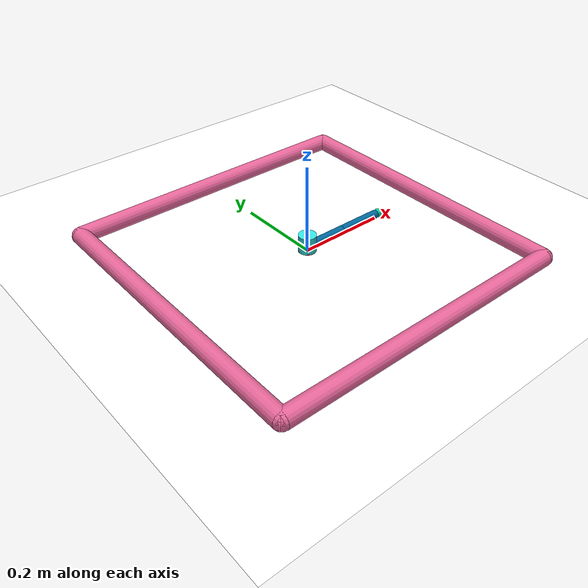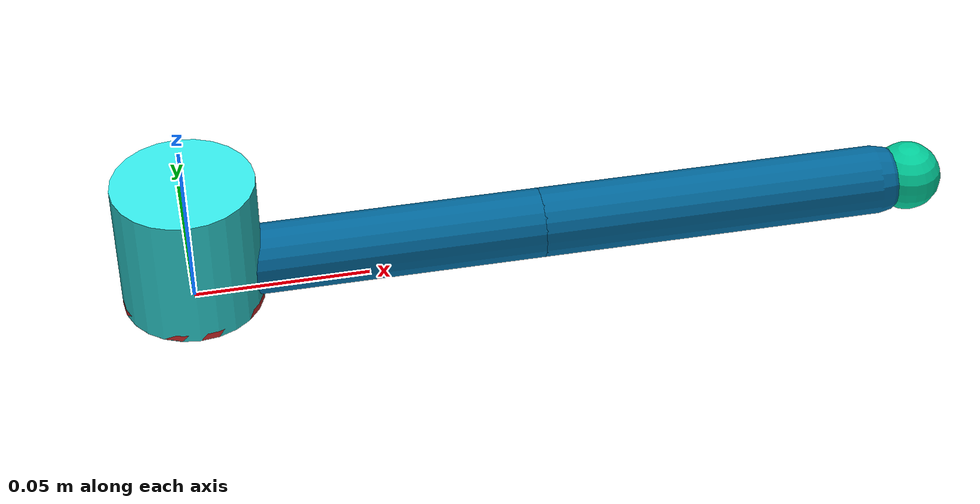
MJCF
<mujoco model="reacher">
	<compiler angle="radian" inertiafromgeom="true"/>
	<default>
		<joint armature="1" damping="1" limited="true"/>
		<geom condim="1" contype="0" friction="0.1 0.001 0.001" rgba="0.7 0.7 0 1"/>
	</default>
	<option gravity="0 0 -9.81" integrator="RK4" timestep="0.01"/>

	<asset>
      <texture name="grid" type="2d" builtin="checker" rgb1=".6 .6 .6"
        rgb2=".8 .8 .8" width="100" height="100" mark="edge" markrgb="0.4 0.4 0.4"/>
      <material name="grid" texture="grid" texrepeat="10 10" texuniform="true"
        reflectance="0"/>
    </asset>

	<worldbody>

	    <light name="top1" pos="0.5 0.5 1"/>
	    <light name="top2" pos="-0.5 0.5 1"/>
	    <light name="top3" pos="0.5 -0.5 1"/>
	    <light name="top4" pos="-0.5 -0.5 1"/>

		<!-- Arena -->
		<geom type="plane" name="ground" pos="0.05 0.05 0" rgba="0.99 0.99 0.99 1" size="0.6 0.6 1"  material="grid" conaffinity="0" contype="0" />
		<geom conaffinity="0" fromto="-.35 -.35 .01 .35 -.35 .01" name="sideS" rgba="0.9 0.4 0.6 1" size=".02" type="capsule"/>
		<geom conaffinity="0" fromto=" .35 -.35 .01 .35  .35 .01" name="sideE" rgba="0.9 0.4 0.6 1" size=".02" type="capsule"/>
		<geom conaffinity="0" fromto="-.35  .35 .01 .35  .35 .01" name="sideN" rgba="0.9 0.4 0.6 1" size=".02" type="capsule"/>
		<geom conaffinity="0" fromto="-.35 -.35 .01 -.35 .35 .01" name="sideW" rgba="0.9 0.4 0.6 1" size=".02" type="capsule"/>

		<!-- Arm -->
		<geom conaffinity="0" contype="0" fromto="0 0 0 0 0 0.02" name="root" rgba="0.9 0.4 0.6 1" size=".011" type="cylinder"/>
		<body name="body0" pos="0 0 .01">
			<geom fromto="0 0 0 0.1 0 0" name="link0" rgba="0.0 0.4 0.6 1" size=".01" type="capsule" contype="1" conaffinity="1" />
			<joint axis="0 0 1" limited="true" name="joint0" pos="0 0 0" range="-3.14 3.14" type="hinge"
                 solreflimit="4e-3 1" solimplimit=".95 .99 1e-3"/>
			<body name="body1" pos="0.1 0 0">
				<joint axis="0 0 1" limited="true" name="joint1" pos="0 0 0" range="-3.0 3.0" type="hinge"
				                 solreflimit="4e-3 1" solimplimit=".95 .99 1e-3"/>
				<geom fromto="0 0 0 0.1 0 0" name="link1" rgba="0.0 0.4 0.6 1" size=".01" type="capsule" contype="1" conaffinity="1" />
				<body name="fingertip" pos="0.11 0 0">
					<geom contype="1" conaffinity="1" name="fingertip" pos="0 0 0" rgba="0.0 0.8 0.6 1" size=".01" type="sphere"/>
				</body>
			</body>
		</body>

		<!-- Target -->
		<body name="target" pos="0 0 .001">
    		<geom conaffinity="0" contype="0" name="target" rgba="0.9 0.2 0.2 1" size=".02 0.001" type="cylinder"/>
			<joint armature="0" axis="1 0 0" damping="0" limited="true" name="target_x" pos="0 0 0" range="-.3 .3" ref="0" stiffness="0" type="slide"/>
			<joint armature="0" axis="0 1 0" damping="0" limited="true" name="target_y" pos="0 0 0" range="-.3 .3" ref="0" stiffness="0" type="slide"/>
		</body>

		<!-- Objects -->
		<body name="obstacle1" pos="0 0 0.02" >
            <geom rgba="0.2 0.9 0.9 1" type="cylinder" size="0.02 0.02" density="0.1" contype="1" conaffinity="1" />
            <joint name="obs1_x" type="slide" pos="0 0 0" axis="1 0 0" range="-0.3 0.3" stiffness="0" damping="0" frictionloss="0.001" armature="0" />
            <joint name="obs1_y" type="slide" pos="0 0 0" axis="0 1 0" range="-0.3 0.3" stiffness="0" damping="0" frictionloss="0.001" armature="0" />
        </body>

		<body name="obstacle2" pos="0 0 0.02" >
            <geom rgba="0.2 0.9 0.9 1" type="cylinder" size="0.02 0.02" density="0.1" contype="1" conaffinity="1" />
            <joint name="obs2_x" type="slide" pos="0 0 0" axis="1 0 0" range="-0.3 0.3" stiffness="0" damping="0" frictionloss="0.001" armature="0" />
            <joint name="obs2_y" type="slide" pos="0 0 0" axis="0 1 0" range="-0.3 0.3" stiffness="0" damping="0" frictionloss="0.001" armature="0" />
        </body>

		<body name="obstacle3" pos="0 0 0.02" >
            <geom type="cylinder" name="obs3" rgba="0.2 0.9 0.9 1" size="0.02 0.02" density="0.1" contype="1" conaffinity="1" />
            <joint type="slide" name="obs3_x" pos="0 0 0" axis="1 0 0" range="-0.4 0.4" stiffness="0" damping="0" frictionloss="0.001" armature="0" />
            <joint type="slide" name="obs3_y" pos="0 0 0" axis="0 1 0" range="-0.4 0.4" stiffness="0" damping="0" frictionloss="0.001" armature="0" />
        </body>

	</worldbody>
	<actuator>
		<motor ctrllimited="true" ctrlrange="-1.0 1.0" gear="200.0" joint="joint0"/>
		<motor ctrllimited="true" ctrlrange="-1.0 1.0" gear="200.0" joint="joint1"/>
	</actuator>
</mujoco>
